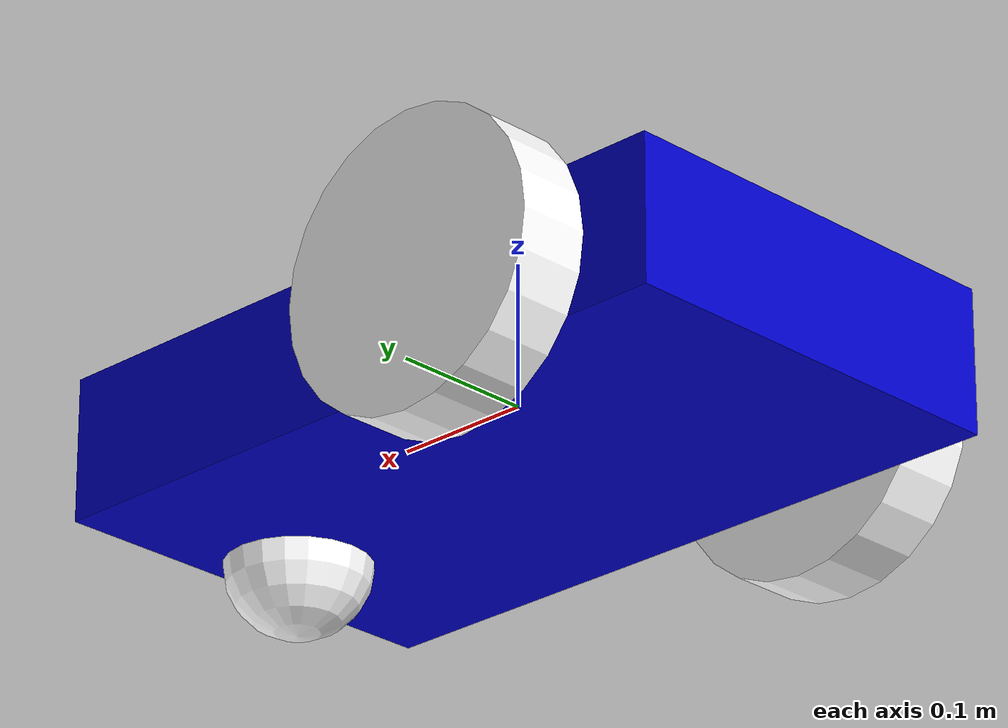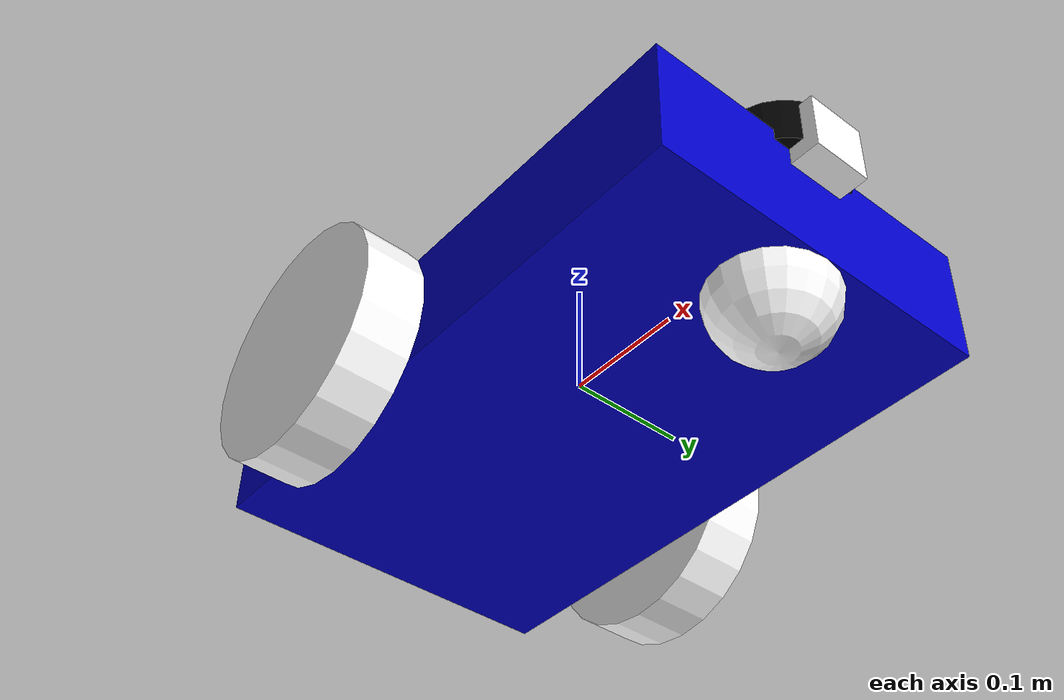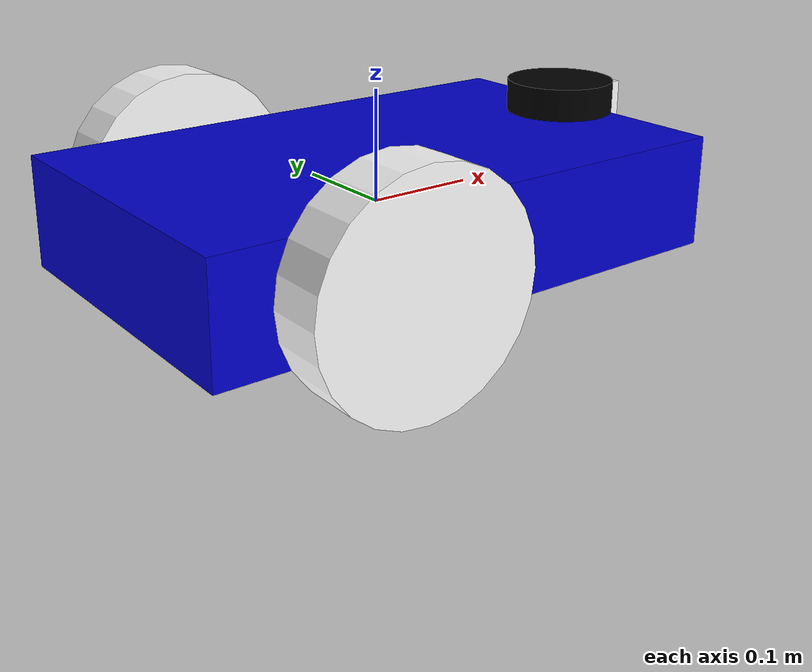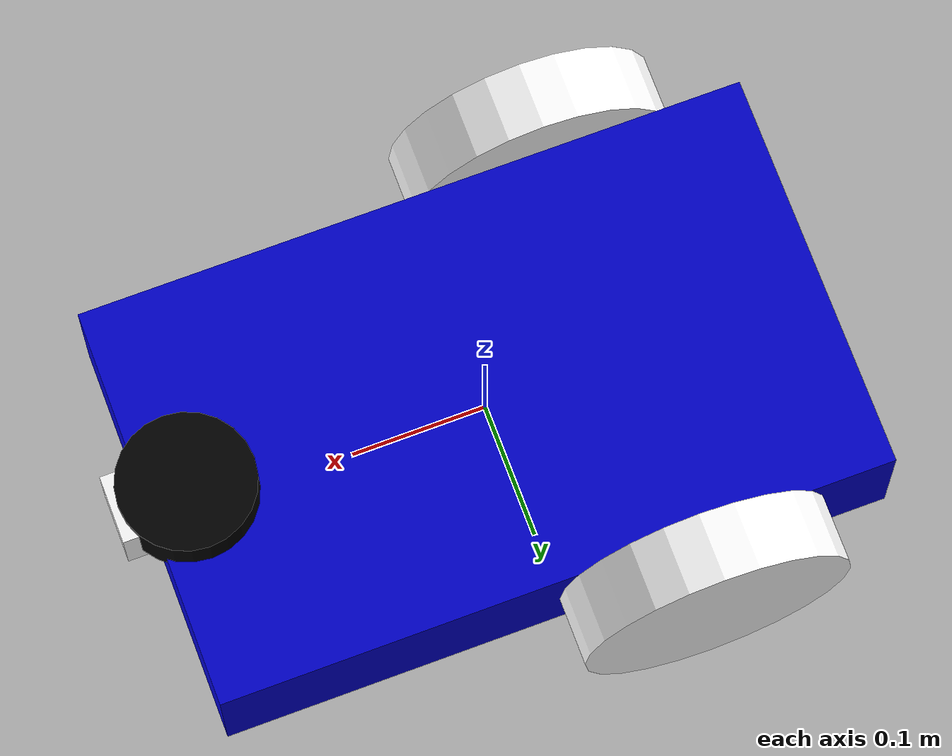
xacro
<?xml version="1.0"?>
<robot name="isr_bot" xmlns:xacro="http://ros.org/wiki/xacro">

  <material name="blue"><color rgba="0 0 0.8 1"/></material>
  <material name="white"><color rgba="1 1 1 1"/></material>
  <material name="black"><color rgba="0 0 0 1"/></material>

  <link name="base_link">  <!-- punto principale del robot -->
    <visual>  <!-- descrive come appare il robot, con la sua forma e il suo colore -->
      <geometry><box size="0.5 0.3 0.1"/></geometry>
      <material name="blue"/>
    </visual>
    <collision>
      <geometry><box size="0.5 0.3 0.1"/></geometry>
    </collision>
    <inertial>  <!-- descrive la massa e la sua distribuzione. senza, GZ non può calcolare come si muove il robot quando applichiamo forza alle ruote. -->
      <mass value="5.0"/> <!--  mass: quanto pesa (5 kg) -->
      <inertia ixx="0.04" ixy="0.0" ixz="0.0" iyy="0.1" iyz="0.0" izz="0.1"/> <!--  inertia: "Tensor d'inerzia". È una matrice che dice quanto è difficile far ruotare l'oggetto -->
    </inertial>
  </link>

  <xacro:macro name="wheel" params="name y_offset">  <!-- creiamo una Macro, è esattamente come una funzione in programmazione, un "template" chiamato wheel che accetta due parametri: -->
  <!-- name: il prefisso del nome (es. "left" o "right"). -->
  <!-- y_offset: la posizione lungo l'asse Y (quanto è distante dal centro del robot). -->
    <link name="${name}_wheel">  <!-- (il blocco da 25 a 44) una volta viene fatto con name="left" e y_offset="0.175", e l'altra volta con name="right" e y_offset="-0.175", come stabilito dalle righe 47 e 48 -->
      <visual>
        <geometry><cylinder radius="0.1" length="0.05"/></geometry>
        <material name="white"/>
      </visual>
      <collision>
        <geometry><cylinder radius="0.1" length="0.05"/></geometry>
      </collision>
      <inertial>
        <mass value="1.0"/>
        <inertia ixx="0.002" ixy="0" ixz="0" iyy="0.002" iyz="0" izz="0.004"/>
      </inertial>
    </link>

    <joint name="${name}_wheel_joint" type="continuous"> <!-- continuous: come una ruota, gira all'infinito senza blocchi. -->
      <parent link="base_link"/>
      <child link="${name}_wheel"/>
      <origin xyz="-0.1 ${y_offset} 0" rpy="${pi/2} 0 0"/>
      <axis xyz="0 0 -1"/>
    </joint>
  </xacro:macro>

  <xacro:wheel name="left" y_offset="0.175"/>
  <xacro:wheel name="right" y_offset="-0.175"/>

  <link name="caster_wheel">  <!-- nei robot a guida differenziale (2 ruote motrici), il robot non può stare in equilibrio da solo (cadrebbe in avanti o indietro), serve un terzo punto di appoggio che qui è una sfera  -->
    <visual>
      <geometry><sphere radius="0.05"/></geometry> <!-- di raggio 5cm -->
      <material name="white"/>
    </visual>
    <collision>
      <geometry><sphere radius="0.05"/></geometry>
    </collision>
    <inertial>
      <mass value="0.5"/>
      <inertia ixx="0.001" ixy="0" ixz="0" iyy="0.001" iyz="0" izz="0.001"/> <!-- valori 0.001 ovunque perchè è perfettamente simmetrica e la difficoltà nel farla ruotare è la stessa -->
    </inertial>
  </link>

  <joint name="caster_joint" type="fixed"> <!-- qui incolliamo la sfera rigidamente al telaio (type="fixed"), e il robot "pattina" su quel punto d'appoggio ottenendo lo stesso risultato di una ruota che gira -->
    <parent link="base_link"/>
    <child link="caster_wheel"/>
    <origin xyz="0.2 0 -0.05"/>  <!-- metà sfera è incassata nel telaio e metà sporge sotto -->
  </joint>

  <link name="camera_link">
    <visual>
      <geometry><box size="0.05 0.05 0.05"/></geometry>
      <material name="white"/>
    </visual>
  </link>
  <joint name="camera_joint" type="fixed">
    <parent link="base_link"/>
    <child link="camera_link"/>
    <origin xyz="0.25 0 0.05" rpy="0 0 0"/> <!-- mettendo la camera a x=0.25 e z=0.05 la stiamo posizionando esattamente sul bordo anteriore superiore, come se fosse appoggiata sul "cofano" del robot -->
  </joint>

  <gazebo reference="camera_link">
    <sensor name="camera" type="camera">
      <pose>0 0 0 0 0 0</pose>
      <visualize>true</visualize>
      <update_rate>10</update_rate> <!-- fps -->
      <topic>camera/image_raw</topic>
      <camera>
        <horizontal_fov>1.047</horizontal_fov> <!-- 1.047 in radianti è circa pi/3 che corrisponde a 60 gradi, è un angolo di visione standard -->
        <image>
          <width>640</width>
          <height>480</height>
        </image>
      </camera>
    </sensor>
  </gazebo>

  <link name="scan_link">
    <visual>
      <geometry><cylinder radius="0.05" length="0.04"/></geometry> <!-- il sensore viene rappresentato come un disco (o "hockey puck") di raggio 5cm, altezza 4cm -->
      <material name="black"/>
    </visual>
    <inertial>
      <mass value="0.1"/> <!-- massa 0.1 (100 grammi) -->
      <inertia ixx="0.001" ixy="0" ixz="0" iyy="0.001" iyz="0" izz="0.001"/> <!-- il LiDAR è spesso montato in alto e aggiungere peso in cima al robot alza il baricentro e influenza (anche se di poco) la stabilità fisica, per una simulazione più accurata -->
    </inertial>
  </link>

  <joint name="scan_joint" type="fixed">
    <parent link="base_link"/>
    <child link="scan_link"/>
    <origin xyz="0.22 0 0.06" rpy="0 0 0"/> <!-- il LiDAR galleggia 1cm sopra il tetto del robot (0.06 - 0.05 = 0.01), simulando i piedini di montaggio o distanziali che tengono il sensore sollevato -->
  </joint>

  <gazebo reference="scan_link">
    <sensor name="lidar" type="gpu_lidar"> dice a Gazebo di usare la Scheda Video (GPU) per calcolare i rimbalzi del laser
      <pose>0 0 0 0 0 0</pose>
      <visualize>true</visualize>
      <update_rate>10</update_rate>
      <topic>scan</topic>

      <frame_id>scan_link</frame_id>
      <ray>
        <scan>
          <horizontal>
            <samples>360</samples>
            <resolution>1</resolution>
            <min_angle>-3.14159</min_angle>
            <max_angle>3.14159</max_angle> <!-- da -3.14 (-pi) a +3.14 (+pi), in gradi significa da -180° a +180°. questo configura un LiDAR a 360 gradi -->
          </horizontal>
        </scan>
        <range>
          <min>0.12</min> <!-- il sensore è "cieco" per i primi 12 cm, realistico poichè i sensori veri non riescono a leggere oggetti incollati alla lente -->
          <max>5.0</max> <!-- il punto esatto dove il raggio laser "muore" o diventa troppo debole per tornare indietro -->
        </range>
      </ray>
    </sensor>
  </gazebo>

  <gazebo>
    <plugin filename="gz-sim-diff-drive-system" name="gz::sim::systems::DiffDrive"> <!-- questo è il plugin che implementa la cinematica della "guida differenziale" trasformando il comando di velocità in movimento reale -->
      <left_joint>left_wheel_joint</left_joint>
      <right_joint>right_wheel_joint</right_joint>
      <wheel_separation>0.35</wheel_separation> <!-- 0.175 (sinistra) + 0.175 (destra) = 0.35. I conti tornano con quanto definito sopra -->
      <wheel_radius>0.1</wheel_radius>
      <topic>cmd_vel</topic> <!-- è l'input del plugin, come 'avanti di 1 m/s' (lingua parlata: geometry_msgs/Twist)  -->
      <odom_topic>odom</odom_topic>
      <tf_topic>tf</tf_topic>
      <frame_id>odom</frame_id>
      <child_frame_id>base_link</child_frame_id>
    </plugin>

    <plugin filename="gz-sim-joint-state-publisher-system" name="gz::sim::systems::JointStatePublisher"> <!-- questo plugin legge l'angolo di rotazione delle ruote in tempo reale e lo dice a ROS -->
    </plugin>

    <plugin filename="gz-sim-sensors-system" name="gz::sim::systems::Sensors"> <!--senza gz-sim-sensors-system i sensori non partono, non catturano dati e non pubblicano nulla -->
      <render_engine>ogre2</render_engine> render_engine: <!-- dice a Gazebo quale motore grafico usare per generare le immagini della camera (Ogre2 è lo standard moderno) -->
    </plugin>
  </gazebo>

</robot>
